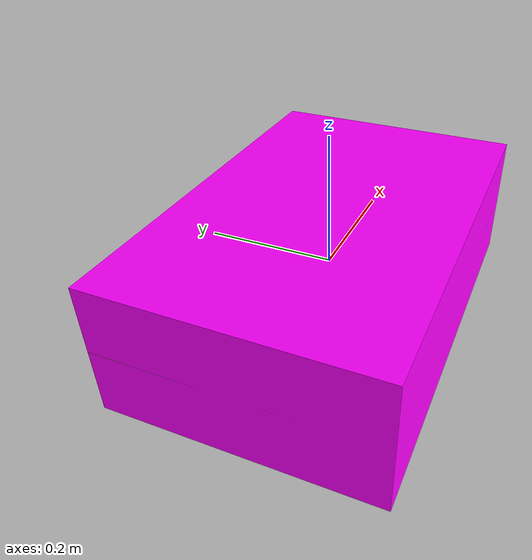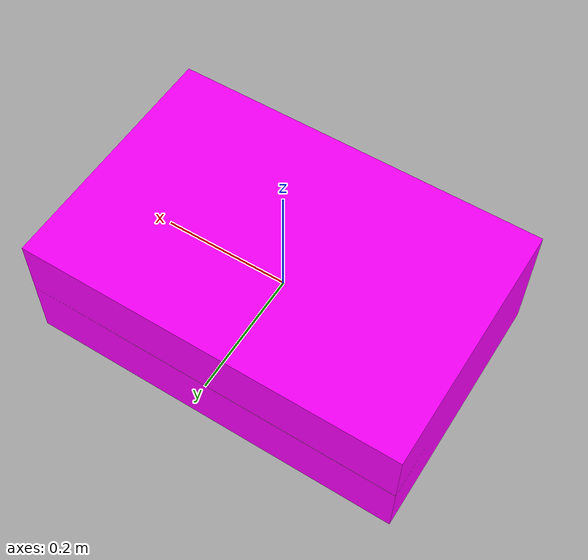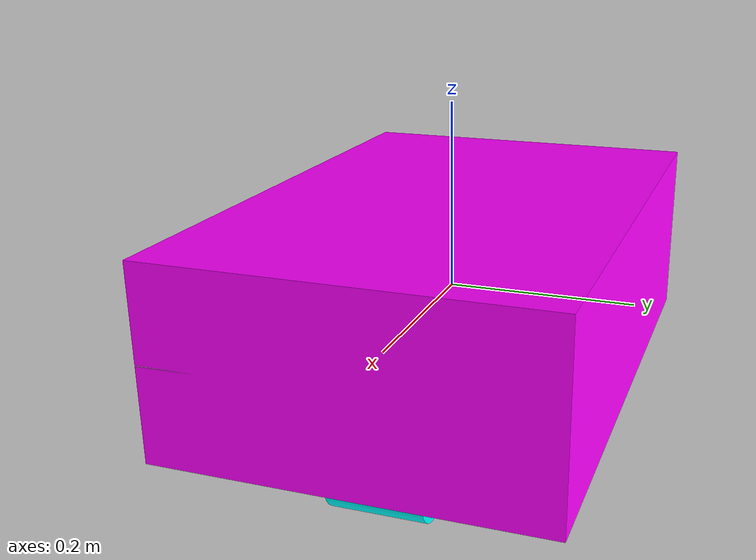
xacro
<?xml version="1.0"?>
<robot xmlns:xacro="http://ros.org/wiki/xacro" name="visual">
    <material name="violetto">
        <color rgba="1 0 1 1 "/>
    </material>
    <material name="acqua_marina">
        <color rgba="0 1 1 1"/>
    </material>

    <material name="base">
        <color rgba="1 1 1 0.5"/>
    </material>
<!-- Questo è il link base nella terna base_link rispetto alla quale vengono definite tutte le altre terne
tale elemento ha il solo scopo di esser di riferimento rispetto al robot mobile -->
    <link name="world"/>
    <joint name="fixed" type="fixed">
        <parent  link="world"/>
        <child link="base_link"/>
    </joint>

    <link name="base_link">
        <visual>
            <geometry>
                <box size="0.6 0.4 0.001"/>
            </geometry>
            <material name="base"/>
        </visual>
        <collision>
            <geometry>
                <box size="0.6 0.4 0.001"/>
            </geometry>
        </collision>
        <inertial>
            <mass value="0.1"/>
            <inertia ixx="1.0" ixy="0.0" ixz="0.0" iyy="1.0" iyz="0.0" izz="1.0"/>
        </inertial>
    </link>

    <link name="carrellino">
        <!--questo è il solo elemento mobile attuato-->
        <visual>
            <origin rpy="0 0 0" xyz="0 0 0"/>
            <geometry>
                <box size="0.6 0.4 0.2"/>
            </geometry>
            <material name="violetto"/>
        </visual>
        <collision>
            <geometry>
                <box size="0.6 0.4 0.2"/>
            </geometry>
        </collision>
        <inertial>
            <mass value="1"/>
            <inertia ixx="1.0" ixy="0.0" ixz="0.0" iyy="1.0" iyz="0.0" izz="1.0"/>
        </inertial>
    </link>

    <joint name="base_carrellino" type="prismatic">
        <parent link="base_link"/>
        <child link="carrellino"/>
        <limit effort="999999.0" lower="-50" upper="50" velocity="5000"/>
        <origin rpy="0 0 0" xyz="0 0 0"/>
    </joint>

<transmission name="carrellino_trans">
    <type>transmission_interface/SimpleTransmission</type>
    <actuator name="carrellino_motor">
      <hardwareInterface>hardware_interface/EffortJointInterface</hardwareInterface>
      <mechanicalReduction>1</mechanicalReduction>
    </actuator>
    <joint name="base_carrellino">
      <hardwareInterface>hardware_interface/EffortJointInterface</hardwareInterface>
    </joint>
  </transmission>

    <link name="left_wheel">
        <visual>
            <origin rpy="1.57075 0 0" xyz="0 0 0"/>
            <geometry>
                <cylinder length="0.1" radius="0.035"/>
            </geometry>
            <material name="acqua_marina"/>
        </visual>
        <collision>
            <origin rpy="1.57075 0 0" xyz="0 0 0"/>
            <geometry>
                <cylinder length="0.1" radius="0.035"/>
            </geometry>
        </collision>
        <inertial>
            <mass value="1"/>
            <inertia ixx="1.0" ixy="0.0" ixz="0.0" iyy="1.0" iyz="0.0" izz="1.0"/>
        </inertial>

    </link>

    <joint name="left_wheel_joint" type="revolute">
        <axis xyz="0 1 0"/>
        <limit effort="1000.0" lower="0.0" upper="0.548" velocity="0.5"/>
        <origin rpy="0 0 0" xyz="-0.2 0 -0.133"/>
        <parent link="carrellino"/>
        <child link="left_wheel"/>
    </joint>

    <link name="right_wheel">
        <visual>
            <origin rpy="1.57075 0 0" xyz="0 0 0"/>
            <geometry>
                <cylinder length="0.1" radius="0.035"/>
            </geometry>
            <material name="acqua_marina"/>
        </visual>
        <collision>
            <origin rpy="1.57075 0 0" xyz="0 0 0"/>
            <geometry>
                <cylinder length="0.1" radius="0.035"/>
            </geometry>
        </collision>
        <inertial>
            <mass value="1"/>
            <inertia ixx="1.0" ixy="0.0" ixz="0.0" iyy="1.0" iyz="0.0" izz="1.0"/>
        </inertial>
    </link>

    <joint name="right_wheel_joint" type="revolute">
        <axis xyz="0 1 0"/>
        <limit effort="1000.0" lower="0.0" upper="0.548" velocity="0.5"/>
        <origin rpy="0 0 0" xyz="0.2 0 -0.133"/>
        <parent link="carrellino"/>
        <child link="right_wheel"/>
    </joint>

    <gazebo>
        <plugin name="gazebo_ros_control" filename="libgazebo_ros_control.so">
            <robotNamespace>/</robotNamespace>

        </plugin>
    </gazebo>
</robot>
